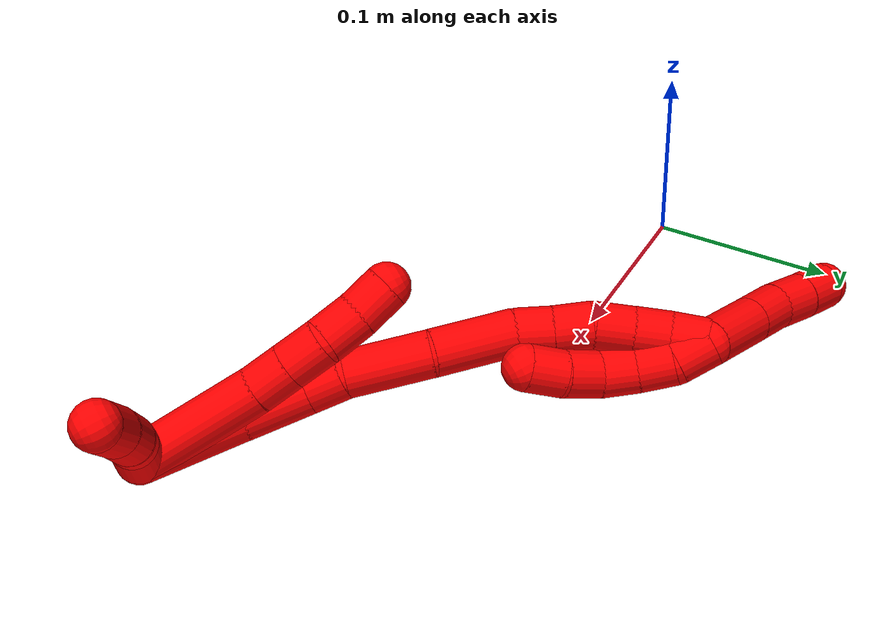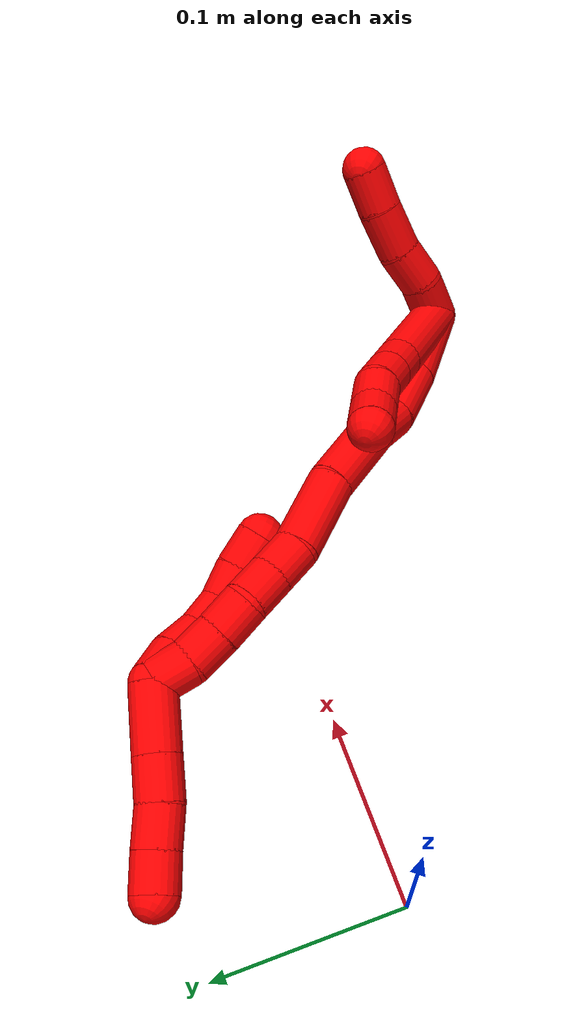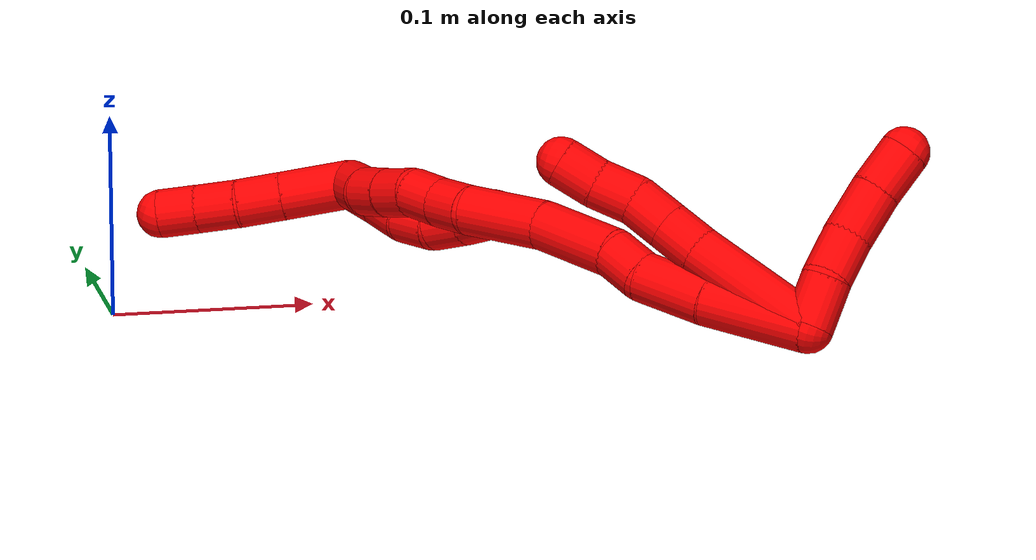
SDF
<sdf version="1.7">
 <world name="default">
  <model name="2">
   <static>0</static>
   <link name="2">
    <collision name="collision-cylinder-e_1_2_8">
     <pose>0.003582 -0.006829 -0.032816 2.93641 0.106454 0.955085</pose>
     <geometry><cylinder><radius>0.0125</radius><length>0.067419</length></cylinder></geometry>
     <surface>
      <friction><ode><mu>1.16</mu><mu2>1.16</mu2><slip1>0</slip1><slip2>0</slip2></ode></friction>
      <contact><ode><kp>1e+06</kp><kd>1</kd><max_vel>0</max_vel><min_depth>0.001</min_depth></ode></contact>
     </surface>
    </collision>
    <visual name="visual-cylinder-e_1_2_8">
     <pose>0.003582 -0.006829 -0.032816 2.93641 0.106454 0.955085</pose>
     <geometry><cylinder><radius>0.0125</radius><length>0.067419</length></cylinder></geometry>
     <material><ambient>1 0 0 1</ambient></material>
    </visual>
    <collision name="collision-cylinder-e_2_8_9">
     <pose>0.009009 -0.015765 -0.07532 2.92756 0.184049 1.41947</pose>
     <geometry><cylinder><radius>0.0125</radius><length>0.02017</length></cylinder></geometry>
     <surface>
      <friction><ode><mu>1.16</mu><mu2>1.16</mu2><slip1>0</slip1><slip2>0</slip2></ode></friction>
      <contact><ode><kp>1e+06</kp><kd>1</kd><max_vel>0</max_vel><min_depth>0.001</min_depth></ode></contact>
     </surface>
    </collision>
    <visual name="visual-cylinder-e_2_8_9">
     <pose>0.009009 -0.015765 -0.07532 2.92756 0.184049 1.41947</pose>
     <geometry><cylinder><radius>0.0125</radius><length>0.02017</length></cylinder></geometry>
     <material><ambient>1 0 0 1</ambient></material>
    </visual>
    <collision name="collision-cylinder-e_3_9_10">
     <pose>0.012777 -0.020088 -0.095068 2.92462 0.184496 1.40828</pose>
     <geometry><cylinder><radius>0.0125</radius><length>0.020959</length></cylinder></geometry>
     <surface>
      <friction><ode><mu>1.16</mu><mu2>1.16</mu2><slip1>0</slip1><slip2>0</slip2></ode></friction>
      <contact><ode><kp>1e+06</kp><kd>1</kd><max_vel>0</max_vel><min_depth>0.001</min_depth></ode></contact>
     </surface>
    </collision>
    <visual name="visual-cylinder-e_3_9_10">
     <pose>0.012777 -0.020088 -0.095068 2.92462 0.184496 1.40828</pose>
     <geometry><cylinder><radius>0.0125</radius><length>0.020959</length></cylinder></geometry>
     <material><ambient>1 0 0 1</ambient></material>
    </visual>
    <collision name="collision-cylinder-e_4_10_11">
     <pose>0.016377 -0.021378 -0.115551 -3.05282 0.158965 -2.12423</pose>
     <geometry><cylinder><radius>0.0125</radius><length>0.021195</length></cylinder></geometry>
     <surface>
      <friction><ode><mu>1.16</mu><mu2>1.16</mu2><slip1>0</slip1><slip2>0</slip2></ode></friction>
      <contact><ode><kp>1e+06</kp><kd>1</kd><max_vel>0</max_vel><min_depth>0.001</min_depth></ode></contact>
     </surface>
    </collision>
    <visual name="visual-cylinder-e_4_10_11">
     <pose>0.016377 -0.021378 -0.115551 -3.05282 0.158965 -2.12423</pose>
     <geometry><cylinder><radius>0.0125</radius><length>0.021195</length></cylinder></geometry>
     <material><ambient>1 0 0 1</ambient></material>
    </visual>
    <collision name="collision-cylinder-e_5_11_6">
     <pose>0.020943 -0.020316 -0.135681 -3.12773 0.289119 -3.04643</pose>
     <geometry><cylinder><radius>0.0125</radius><length>0.020257</length></cylinder></geometry>
     <surface>
      <friction><ode><mu>1.16</mu><mu2>1.16</mu2><slip1>0</slip1><slip2>0</slip2></ode></friction>
      <contact><ode><kp>1e+06</kp><kd>1</kd><max_vel>0</max_vel><min_depth>0.001</min_depth></ode></contact>
     </surface>
    </collision>
    <visual name="visual-cylinder-e_5_11_6">
     <pose>0.020943 -0.020316 -0.135681 -3.12773 0.289119 -3.04643</pose>
     <geometry><cylinder><radius>0.0125</radius><length>0.020257</length></cylinder></geometry>
     <material><ambient>1 0 0 1</ambient></material>
    </visual>
    <collision name="collision-cylinder-e_1_2_12">
     <pose>0.006784 -0.010728 -0.000683 1.63437 0.562967 0.597844</pose>
     <geometry><cylinder><radius>0.0125</radius><length>0.025422</length></cylinder></geometry>
     <surface>
      <friction><ode><mu>1.16</mu><mu2>1.16</mu2><slip1>0</slip1><slip2>0</slip2></ode></friction>
      <contact><ode><kp>1e+06</kp><kd>1</kd><max_vel>0</max_vel><min_depth>0.001</min_depth></ode></contact>
     </surface>
    </collision>
    <visual name="visual-cylinder-e_1_2_12">
     <pose>0.006784 -0.010728 -0.000683 1.63437 0.562967 0.597844</pose>
     <geometry><cylinder><radius>0.0125</radius><length>0.025422</length></cylinder></geometry>
     <material><ambient>1 0 0 1</ambient></material>
    </visual>
    <collision name="collision-cylinder-e_2_12_13">
     <pose>0.017337 -0.032701 -0.00163 1.59425 0.323327 0.330863</pose>
     <geometry><cylinder><radius>0.0125</radius><length>0.023726</length></cylinder></geometry>
     <surface>
      <friction><ode><mu>1.16</mu><mu2>1.16</mu2><slip1>0</slip1><slip2>0</slip2></ode></friction>
      <contact><ode><kp>1e+06</kp><kd>1</kd><max_vel>0</max_vel><min_depth>0.001</min_depth></ode></contact>
     </surface>
    </collision>
    <visual name="visual-cylinder-e_2_12_13">
     <pose>0.017337 -0.032701 -0.00163 1.59425 0.323327 0.330863</pose>
     <geometry><cylinder><radius>0.0125</radius><length>0.023726</length></cylinder></geometry>
     <material><ambient>1 0 0 1</ambient></material>
    </visual>
    <collision name="collision-cylinder-e_3_13_14">
     <pose>0.027028 -0.055975 -0.000498 1.45529 0.454844 0.406562</pose>
     <geometry><cylinder><radius>0.0125</radius><length>0.02696</length></cylinder></geometry>
     <surface>
      <friction><ode><mu>1.16</mu><mu2>1.16</mu2><slip1>0</slip1><slip2>0</slip2></ode></friction>
      <contact><ode><kp>1e+06</kp><kd>1</kd><max_vel>0</max_vel><min_depth>0.001</min_depth></ode></contact>
     </surface>
    </collision>
    <visual name="visual-cylinder-e_3_13_14">
     <pose>0.027028 -0.055975 -0.000498 1.45529 0.454844 0.406562</pose>
     <geometry><cylinder><radius>0.0125</radius><length>0.02696</length></cylinder></geometry>
     <material><ambient>1 0 0 1</ambient></material>
    </visual>
    <collision name="collision-cylinder-e_4_14_5">
     <pose>0.038293 -0.078422 0.003267 1.34714 0.463689 0.372472</pose>
     <geometry><cylinder><radius>0.0125</radius><length>0.023892</length></cylinder></geometry>
     <surface>
      <friction><ode><mu>1.16</mu><mu2>1.16</mu2><slip1>0</slip1><slip2>0</slip2></ode></friction>
      <contact><ode><kp>1e+06</kp><kd>1</kd><max_vel>0</max_vel><min_depth>0.001</min_depth></ode></contact>
     </surface>
    </collision>
    <visual name="visual-cylinder-e_4_14_5">
     <pose>0.038293 -0.078422 0.003267 1.34714 0.463689 0.372472</pose>
     <geometry><cylinder><radius>0.0125</radius><length>0.023892</length></cylinder></geometry>
     <material><ambient>1 0 0 1</ambient></material>
    </visual>
    <collision name="collision-cylinder-e_1_2_15">
     <pose>-0.002869 0.001437 -0.026487 -3.08738 -0.107723 2.20974</pose>
     <geometry><cylinder><radius>0.0125</radius><length>0.053362</length></cylinder></geometry>
     <surface>
      <friction><ode><mu>1.16</mu><mu2>1.16</mu2><slip1>0</slip1><slip2>0</slip2></ode></friction>
      <contact><ode><kp>1e+06</kp><kd>1</kd><max_vel>0</max_vel><min_depth>0.001</min_depth></ode></contact>
     </surface>
    </collision>
    <visual name="visual-cylinder-e_1_2_15">
     <pose>-0.002869 0.001437 -0.026487 -3.08738 -0.107723 2.20974</pose>
     <geometry><cylinder><radius>0.0125</radius><length>0.053362</length></cylinder></geometry>
     <material><ambient>1 0 0 1</ambient></material>
    </visual>
    <collision name="collision-cylinder-e_2_15_16">
     <pose>-0.007342 0.001996 -0.070825 3.09243 -0.089583 -2.13814</pose>
     <geometry><cylinder><radius>0.0125</radius><length>0.035887</length></cylinder></geometry>
     <surface>
      <friction><ode><mu>1.16</mu><mu2>1.16</mu2><slip1>0</slip1><slip2>0</slip2></ode></friction>
      <contact><ode><kp>1e+06</kp><kd>1</kd><max_vel>0</max_vel><min_depth>0.001</min_depth></ode></contact>
     </surface>
    </collision>
    <visual name="visual-cylinder-e_2_15_16">
     <pose>-0.007342 0.001996 -0.070825 3.09243 -0.089583 -2.13814</pose>
     <geometry><cylinder><radius>0.0125</radius><length>0.035887</length></cylinder></geometry>
     <material><ambient>1 0 0 1</ambient></material>
    </visual>
    <collision name="collision-cylinder-e_3_16_17">
     <pose>-0.009044 -0.002476 -0.098594 2.79397 -0.009146 -0.052077</pose>
     <geometry><cylinder><radius>0.0125</radius><length>0.021102</length></cylinder></geometry>
     <surface>
      <friction><ode><mu>1.16</mu><mu2>1.16</mu2><slip1>0</slip1><slip2>0</slip2></ode></friction>
      <contact><ode><kp>1e+06</kp><kd>1</kd><max_vel>0</max_vel><min_depth>0.001</min_depth></ode></contact>
     </surface>
    </collision>
    <visual name="visual-cylinder-e_3_16_17">
     <pose>-0.009044 -0.002476 -0.098594 2.79397 -0.009146 -0.052077</pose>
     <geometry><cylinder><radius>0.0125</radius><length>0.021102</length></cylinder></geometry>
     <material><ambient>1 0 0 1</ambient></material>
    </visual>
    <collision name="collision-cylinder-e_4_17_18">
     <pose>-0.013927 -0.010054 -0.130043 2.95862 -0.215228 -1.73351</pose>
     <geometry><cylinder><radius>0.0125</radius><length>0.044823</length></cylinder></geometry>
     <surface>
      <friction><ode><mu>1.16</mu><mu2>1.16</mu2><slip1>0</slip1><slip2>0</slip2></ode></friction>
      <contact><ode><kp>1e+06</kp><kd>1</kd><max_vel>0</max_vel><min_depth>0.001</min_depth></ode></contact>
     </surface>
    </collision>
    <visual name="visual-cylinder-e_4_17_18">
     <pose>-0.013927 -0.010054 -0.130043 2.95862 -0.215228 -1.73351</pose>
     <geometry><cylinder><radius>0.0125</radius><length>0.044823</length></cylinder></geometry>
     <material><ambient>1 0 0 1</ambient></material>
    </visual>
    <collision name="collision-cylinder-e_5_18_19">
     <pose>-0.02407 -0.014081 -0.172886 3.13956 -0.246223 -3.12515</pose>
     <geometry><cylinder><radius>0.0125</radius><length>0.043955</length></cylinder></geometry>
     <surface>
      <friction><ode><mu>1.16</mu><mu2>1.16</mu2><slip1>0</slip1><slip2>0</slip2></ode></friction>
      <contact><ode><kp>1e+06</kp><kd>1</kd><max_vel>0</max_vel><min_depth>0.001</min_depth></ode></contact>
     </surface>
    </collision>
    <visual name="visual-cylinder-e_5_18_19">
     <pose>-0.02407 -0.014081 -0.172886 3.13956 -0.246223 -3.12515</pose>
     <geometry><cylinder><radius>0.0125</radius><length>0.043955</length></cylinder></geometry>
     <material><ambient>1 0 0 1</ambient></material>
    </visual>
    <collision name="collision-cylinder-e_6_19_20">
     <pose>-0.033229 -0.016212 -0.203242 2.91468 -0.388847 -2.09244</pose>
     <geometry><cylinder><radius>0.0125</radius><length>0.020055</length></cylinder></geometry>
     <surface>
      <friction><ode><mu>1.16</mu><mu2>1.16</mu2><slip1>0</slip1><slip2>0</slip2></ode></friction>
      <contact><ode><kp>1e+06</kp><kd>1</kd><max_vel>0</max_vel><min_depth>0.001</min_depth></ode></contact>
     </surface>
    </collision>
    <visual name="visual-cylinder-e_6_19_20">
     <pose>-0.033229 -0.016212 -0.203242 2.91468 -0.388847 -2.09244</pose>
     <geometry><cylinder><radius>0.0125</radius><length>0.020055</length></cylinder></geometry>
     <material><ambient>1 0 0 1</ambient></material>
    </visual>
    <collision name="collision-cylinder-e_7_20_21">
     <pose>-0.040178 -0.020576 -0.221579 2.90149 -0.317736 -1.85085</pose>
     <geometry><cylinder><radius>0.0125</radius><length>0.02015</length></cylinder></geometry>
     <surface>
      <friction><ode><mu>1.16</mu><mu2>1.16</mu2><slip1>0</slip1><slip2>0</slip2></ode></friction>
      <contact><ode><kp>1e+06</kp><kd>1</kd><max_vel>0</max_vel><min_depth>0.001</min_depth></ode></contact>
     </surface>
    </collision>
    <visual name="visual-cylinder-e_7_20_21">
     <pose>-0.040178 -0.020576 -0.221579 2.90149 -0.317736 -1.85085</pose>
     <geometry><cylinder><radius>0.0125</radius><length>0.02015</length></cylinder></geometry>
     <material><ambient>1 0 0 1</ambient></material>
    </visual>
    <collision name="collision-cylinder-e_8_21_22">
     <pose>-0.048982 -0.024402 -0.239224 2.95793 -0.587559 -2.55061</pose>
     <geometry><cylinder><radius>0.0125</radius><length>0.020406</length></cylinder></geometry>
     <surface>
      <friction><ode><mu>1.16</mu><mu2>1.16</mu2><slip1>0</slip1><slip2>0</slip2></ode></friction>
      <contact><ode><kp>1e+06</kp><kd>1</kd><max_vel>0</max_vel><min_depth>0.001</min_depth></ode></contact>
     </surface>
    </collision>
    <visual name="visual-cylinder-e_8_21_22">
     <pose>-0.048982 -0.024402 -0.239224 2.95793 -0.587559 -2.55061</pose>
     <geometry><cylinder><radius>0.0125</radius><length>0.020406</length></cylinder></geometry>
     <material><ambient>1 0 0 1</ambient></material>
    </visual>
    <collision name="collision-cylinder-e_9_22_23">
     <pose>-0.060133 -0.02805 -0.25567 2.8882 -0.581394 -2.33656</pose>
     <geometry><cylinder><radius>0.0125</radius><length>0.020015</length></cylinder></geometry>
     <surface>
      <friction><ode><mu>1.16</mu><mu2>1.16</mu2><slip1>0</slip1><slip2>0</slip2></ode></friction>
      <contact><ode><kp>1e+06</kp><kd>1</kd><max_vel>0</max_vel><min_depth>0.001</min_depth></ode></contact>
     </surface>
    </collision>
    <visual name="visual-cylinder-e_9_22_23">
     <pose>-0.060133 -0.02805 -0.25567 2.8882 -0.581394 -2.33656</pose>
     <geometry><cylinder><radius>0.0125</radius><length>0.020015</length></cylinder></geometry>
     <material><ambient>1 0 0 1</ambient></material>
    </visual>
    <collision name="collision-cylinder-e_10_23_1">
     <pose>-0.070858 -0.034735 -0.271119 2.58367 -0.542825 -1.54193</pose>
     <geometry><cylinder><radius>0.0125</radius><length>0.020245</length></cylinder></geometry>
     <surface>
      <friction><ode><mu>1.16</mu><mu2>1.16</mu2><slip1>0</slip1><slip2>0</slip2></ode></friction>
      <contact><ode><kp>1e+06</kp><kd>1</kd><max_vel>0</max_vel><min_depth>0.001</min_depth></ode></contact>
     </surface>
    </collision>
    <visual name="visual-cylinder-e_10_23_1">
     <pose>-0.070858 -0.034735 -0.271119 2.58367 -0.542825 -1.54193</pose>
     <geometry><cylinder><radius>0.0125</radius><length>0.020245</length></cylinder></geometry>
     <material><ambient>1 0 0 1</ambient></material>
    </visual>
    <collision name="collision-cylinder-e_1_1_24">
     <pose>-0.079171 -0.029803 -0.293121 -2.56527 -0.174702 0.574548</pose>
     <geometry><cylinder><radius>0.0125</radius><length>0.035482</length></cylinder></geometry>
     <surface>
      <friction><ode><mu>1.16</mu><mu2>1.16</mu2><slip1>0</slip1><slip2>0</slip2></ode></friction>
      <contact><ode><kp>1e+06</kp><kd>1</kd><max_vel>0</max_vel><min_depth>0.001</min_depth></ode></contact>
     </surface>
    </collision>
    <visual name="visual-cylinder-e_1_1_24">
     <pose>-0.079171 -0.029803 -0.293121 -2.56527 -0.174702 0.574548</pose>
     <geometry><cylinder><radius>0.0125</radius><length>0.035482</length></cylinder></geometry>
     <material><ambient>1 0 0 1</ambient></material>
    </visual>
    <collision name="collision-cylinder-e_2_24_25">
     <pose>-0.084141 -0.014118 -0.317207 -2.56301 -0.16581 0.544496</pose>
     <geometry><cylinder><radius>0.0125</radius><length>0.022857</length></cylinder></geometry>
     <surface>
      <friction><ode><mu>1.16</mu><mu2>1.16</mu2><slip1>0</slip1><slip2>0</slip2></ode></friction>
      <contact><ode><kp>1e+06</kp><kd>1</kd><max_vel>0</max_vel><min_depth>0.001</min_depth></ode></contact>
     </surface>
    </collision>
    <visual name="visual-cylinder-e_2_24_25">
     <pose>-0.084141 -0.014118 -0.317207 -2.56301 -0.16581 0.544496</pose>
     <geometry><cylinder><radius>0.0125</radius><length>0.022857</length></cylinder></geometry>
     <material><ambient>1 0 0 1</ambient></material>
    </visual>
    <collision name="collision-cylinder-e_3_25_26">
     <pose>-0.088569 -0.003402 -0.336049 -2.69078 -0.238631 0.963481</pose>
     <geometry><cylinder><radius>0.0125</radius><length>0.021506</length></cylinder></geometry>
     <surface>
      <friction><ode><mu>1.16</mu><mu2>1.16</mu2><slip1>0</slip1><slip2>0</slip2></ode></friction>
      <contact><ode><kp>1e+06</kp><kd>1</kd><max_vel>0</max_vel><min_depth>0.001</min_depth></ode></contact>
     </surface>
    </collision>
    <visual name="visual-cylinder-e_3_25_26">
     <pose>-0.088569 -0.003402 -0.336049 -2.69078 -0.238631 0.963481</pose>
     <geometry><cylinder><radius>0.0125</radius><length>0.021506</length></cylinder></geometry>
     <material><ambient>1 0 0 1</ambient></material>
    </visual>
    <collision name="collision-cylinder-e_4_26_4">
     <pose>-0.093115 0.005706 -0.354215 -2.66212 -0.200286 0.780017</pose>
     <geometry><cylinder><radius>0.0125</radius><length>0.020155</length></cylinder></geometry>
     <surface>
      <friction><ode><mu>1.16</mu><mu2>1.16</mu2><slip1>0</slip1><slip2>0</slip2></ode></friction>
      <contact><ode><kp>1e+06</kp><kd>1</kd><max_vel>0</max_vel><min_depth>0.001</min_depth></ode></contact>
     </surface>
    </collision>
    <visual name="visual-cylinder-e_4_26_4">
     <pose>-0.093115 0.005706 -0.354215 -2.66212 -0.200286 0.780017</pose>
     <geometry><cylinder><radius>0.0125</radius><length>0.020155</length></cylinder></geometry>
     <material><ambient>1 0 0 1</ambient></material>
    </visual>
    <collision name="collision-cylinder-e_1_1_27">
     <pose>-0.076501 -0.037831 -0.268593 -0.15001 -0.041348 0.003108</pose>
     <geometry><cylinder><radius>0.0125</radius><length>0.02</length></cylinder></geometry>
     <surface>
      <friction><ode><mu>1.16</mu><mu2>1.16</mu2><slip1>0</slip1><slip2>0</slip2></ode></friction>
      <contact><ode><kp>1e+06</kp><kd>1</kd><max_vel>0</max_vel><min_depth>0.001</min_depth></ode></contact>
     </surface>
    </collision>
    <visual name="visual-cylinder-e_1_1_27">
     <pose>-0.076501 -0.037831 -0.268593 -0.15001 -0.041348 0.003108</pose>
     <geometry><cylinder><radius>0.0125</radius><length>0.02</length></cylinder></geometry>
     <material><ambient>1 0 0 1</ambient></material>
    </visual>
    <collision name="collision-cylinder-e_2_27_28">
     <pose>-0.074957 -0.032854 -0.249547 -0.363197 0.196998 -0.036286</pose>
     <geometry><cylinder><radius>0.0125</radius><length>0.02</length></cylinder></geometry>
     <surface>
      <friction><ode><mu>1.16</mu><mu2>1.16</mu2><slip1>0</slip1><slip2>0</slip2></ode></friction>
      <contact><ode><kp>1e+06</kp><kd>1</kd><max_vel>0</max_vel><min_depth>0.001</min_depth></ode></contact>
     </surface>
    </collision>
    <visual name="visual-cylinder-e_2_27_28">
     <pose>-0.074957 -0.032854 -0.249547 -0.363197 0.196998 -0.036286</pose>
     <geometry><cylinder><radius>0.0125</radius><length>0.02</length></cylinder></geometry>
     <material><ambient>1 0 0 1</ambient></material>
    </visual>
    <collision name="collision-cylinder-e_3_28_29">
     <pose>-0.069739 -0.027902 -0.231041 -0.155892 0.332065 -0.026175</pose>
     <geometry><cylinder><radius>0.0125</radius><length>0.02</length></cylinder></geometry>
     <surface>
      <friction><ode><mu>1.16</mu><mu2>1.16</mu2><slip1>0</slip1><slip2>0</slip2></ode></friction>
      <contact><ode><kp>1e+06</kp><kd>1</kd><max_vel>0</max_vel><min_depth>0.001</min_depth></ode></contact>
     </surface>
    </collision>
    <visual name="visual-cylinder-e_3_28_29">
     <pose>-0.069739 -0.027902 -0.231041 -0.155892 0.332065 -0.026175</pose>
     <geometry><cylinder><radius>0.0125</radius><length>0.02</length></cylinder></geometry>
     <material><ambient>1 0 0 1</ambient></material>
    </visual>
    <collision name="collision-cylinder-e_4_29_30">
     <pose>-0.061423 -0.027818 -0.213186 0.16112 0.530115 0.043823</pose>
     <geometry><cylinder><radius>0.0125</radius><length>0.02</length></cylinder></geometry>
     <surface>
      <friction><ode><mu>1.16</mu><mu2>1.16</mu2><slip1>0</slip1><slip2>0</slip2></ode></friction>
      <contact><ode><kp>1e+06</kp><kd>1</kd><max_vel>0</max_vel><min_depth>0.001</min_depth></ode></contact>
     </surface>
    </collision>
    <visual name="visual-cylinder-e_4_29_30">
     <pose>-0.061423 -0.027818 -0.213186 0.16112 0.530115 0.043823</pose>
     <geometry><cylinder><radius>0.0125</radius><length>0.02</length></cylinder></geometry>
     <material><ambient>1 0 0 1</ambient></material>
    </visual>
    <collision name="collision-cylinder-e_5_30_3">
     <pose>-0.050215 -0.029505 -0.196792 0.038487 0.662606 0.01324</pose>
     <geometry><cylinder><radius>0.0125</radius><length>0.02</length></cylinder></geometry>
     <surface>
      <friction><ode><mu>1.16</mu><mu2>1.16</mu2><slip1>0</slip1><slip2>0</slip2></ode></friction>
      <contact><ode><kp>1e+06</kp><kd>1</kd><max_vel>0</max_vel><min_depth>0.001</min_depth></ode></contact>
     </surface>
    </collision>
    <visual name="visual-cylinder-e_5_30_3">
     <pose>-0.050215 -0.029505 -0.196792 0.038487 0.662606 0.01324</pose>
     <geometry><cylinder><radius>0.0125</radius><length>0.02</length></cylinder></geometry>
     <material><ambient>1 0 0 1</ambient></material>
    </visual>
    <collision name="collision-sphere-3">
     <pose>-0.044063 -0.029809 -0.188914 0 -0 0</pose>
     <geometry><sphere><radius>0.0125</radius></sphere></geometry>
     <surface>
      <friction><ode><mu>1.16</mu><mu2>1.16</mu2><slip1>0</slip1><slip2>0</slip2></ode></friction>
      <contact><ode><kp>1e+06</kp><kd>1</kd><max_vel>0</max_vel><min_depth>0.001</min_depth></ode></contact>
     </surface>
    </collision>
    <visual name="visual-sphere-3">
     <pose>-0.044063 -0.029809 -0.188914 0 -0 0</pose>
     <geometry><sphere><radius>0.0125</radius></sphere></geometry>
     <material><ambient>1 0 0 1</ambient></material>
    </visual>
    <collision name="collision-sphere-30">
     <pose>-0.056367 -0.029202 -0.20467 0 -0 0</pose>
     <geometry><sphere><radius>0.0125</radius></sphere></geometry>
     <surface>
      <friction><ode><mu>1.16</mu><mu2>1.16</mu2><slip1>0</slip1><slip2>0</slip2></ode></friction>
      <contact><ode><kp>1e+06</kp><kd>1</kd><max_vel>0</max_vel><min_depth>0.001</min_depth></ode></contact>
     </surface>
    </collision>
    <visual name="visual-sphere-30">
     <pose>-0.056367 -0.029202 -0.20467 0 -0 0</pose>
     <geometry><sphere><radius>0.0125</radius></sphere></geometry>
     <material><ambient>1 0 0 1</ambient></material>
    </visual>
    <collision name="collision-sphere-29">
     <pose>-0.066479 -0.026434 -0.221702 0 -0 0</pose>
     <geometry><sphere><radius>0.0125</radius></sphere></geometry>
     <surface>
      <friction><ode><mu>1.16</mu><mu2>1.16</mu2><slip1>0</slip1><slip2>0</slip2></ode></friction>
      <contact><ode><kp>1e+06</kp><kd>1</kd><max_vel>0</max_vel><min_depth>0.001</min_depth></ode></contact>
     </surface>
    </collision>
    <visual name="visual-sphere-29">
     <pose>-0.066479 -0.026434 -0.221702 0 -0 0</pose>
     <geometry><sphere><radius>0.0125</radius></sphere></geometry>
     <material><ambient>1 0 0 1</ambient></material>
    </visual>
    <collision name="collision-sphere-28">
     <pose>-0.072999 -0.02937 -0.24038 0 -0 0</pose>
     <geometry><sphere><radius>0.0125</radius></sphere></geometry>
     <surface>
      <friction><ode><mu>1.16</mu><mu2>1.16</mu2><slip1>0</slip1><slip2>0</slip2></ode></friction>
      <contact><ode><kp>1e+06</kp><kd>1</kd><max_vel>0</max_vel><min_depth>0.001</min_depth></ode></contact>
     </surface>
    </collision>
    <visual name="visual-sphere-28">
     <pose>-0.072999 -0.02937 -0.24038 0 -0 0</pose>
     <geometry><sphere><radius>0.0125</radius></sphere></geometry>
     <material><ambient>1 0 0 1</ambient></material>
    </visual>
    <collision name="collision-sphere-27">
     <pose>-0.076914 -0.036337 -0.258713 0 -0 0</pose>
     <geometry><sphere><radius>0.0125</radius></sphere></geometry>
     <surface>
      <friction><ode><mu>1.16</mu><mu2>1.16</mu2><slip1>0</slip1><slip2>0</slip2></ode></friction>
      <contact><ode><kp>1e+06</kp><kd>1</kd><max_vel>0</max_vel><min_depth>0.001</min_depth></ode></contact>
     </surface>
    </collision>
    <visual name="visual-sphere-27">
     <pose>-0.076914 -0.036337 -0.258713 0 -0 0</pose>
     <geometry><sphere><radius>0.0125</radius></sphere></geometry>
     <material><ambient>1 0 0 1</ambient></material>
    </visual>
    <collision name="collision-sphere-4">
     <pose>-0.09512 0.010262 -0.362978 0 -0 0</pose>
     <geometry><sphere><radius>0.0125</radius></sphere></geometry>
     <surface>
      <friction><ode><mu>1.16</mu><mu2>1.16</mu2><slip1>0</slip1><slip2>0</slip2></ode></friction>
      <contact><ode><kp>1e+06</kp><kd>1</kd><max_vel>0</max_vel><min_depth>0.001</min_depth></ode></contact>
     </surface>
    </collision>
    <visual name="visual-sphere-4">
     <pose>-0.09512 0.010262 -0.362978 0 -0 0</pose>
     <geometry><sphere><radius>0.0125</radius></sphere></geometry>
     <material><ambient>1 0 0 1</ambient></material>
    </visual>
    <collision name="collision-sphere-26">
     <pose>-0.091111 0.00115 -0.345453 0 -0 0</pose>
     <geometry><sphere><radius>0.0125</radius></sphere></geometry>
     <surface>
      <friction><ode><mu>1.16</mu><mu2>1.16</mu2><slip1>0</slip1><slip2>0</slip2></ode></friction>
      <contact><ode><kp>1e+06</kp><kd>1</kd><max_vel>0</max_vel><min_depth>0.001</min_depth></ode></contact>
     </surface>
    </collision>
    <visual name="visual-sphere-26">
     <pose>-0.091111 0.00115 -0.345453 0 -0 0</pose>
     <geometry><sphere><radius>0.0125</radius></sphere></geometry>
     <material><ambient>1 0 0 1</ambient></material>
    </visual>
    <collision name="collision-sphere-25">
     <pose>-0.086027 -0.007955 -0.326644 0 -0 0</pose>
     <geometry><sphere><radius>0.0125</radius></sphere></geometry>
     <surface>
      <friction><ode><mu>1.16</mu><mu2>1.16</mu2><slip1>0</slip1><slip2>0</slip2></ode></friction>
      <contact><ode><kp>1e+06</kp><kd>1</kd><max_vel>0</max_vel><min_depth>0.001</min_depth></ode></contact>
     </surface>
    </collision>
    <visual name="visual-sphere-25">
     <pose>-0.086027 -0.007955 -0.326644 0 -0 0</pose>
     <geometry><sphere><radius>0.0125</radius></sphere></geometry>
     <material><ambient>1 0 0 1</ambient></material>
    </visual>
    <collision name="collision-sphere-24">
     <pose>-0.082254 -0.020282 -0.30777 0 -0 0</pose>
     <geometry><sphere><radius>0.0125</radius></sphere></geometry>
     <surface>
      <friction><ode><mu>1.16</mu><mu2>1.16</mu2><slip1>0</slip1><slip2>0</slip2></ode></friction>
      <contact><ode><kp>1e+06</kp><kd>1</kd><max_vel>0</max_vel><min_depth>0.001</min_depth></ode></contact>
     </surface>
    </collision>
    <visual name="visual-sphere-24">
     <pose>-0.082254 -0.020282 -0.30777 0 -0 0</pose>
     <geometry><sphere><radius>0.0125</radius></sphere></geometry>
     <material><ambient>1 0 0 1</ambient></material>
    </visual>
    <collision name="collision-sphere-1">
     <pose>-0.076087 -0.039324 -0.278472 0 -0 0</pose>
     <geometry><sphere><radius>0.0125</radius></sphere></geometry>
     <surface>
      <friction><ode><mu>1.16</mu><mu2>1.16</mu2><slip1>0</slip1><slip2>0</slip2></ode></friction>
      <contact><ode><kp>1e+06</kp><kd>1</kd><max_vel>0</max_vel><min_depth>0.001</min_depth></ode></contact>
     </surface>
    </collision>
    <visual name="visual-sphere-1">
     <pose>-0.076087 -0.039324 -0.278472 0 -0 0</pose>
     <geometry><sphere><radius>0.0125</radius></sphere></geometry>
     <material><ambient>1 0 0 1</ambient></material>
    </visual>
    <collision name="collision-sphere-23">
     <pose>-0.06563 -0.030147 -0.263766 0 -0 0</pose>
     <geometry><sphere><radius>0.0125</radius></sphere></geometry>
     <surface>
      <friction><ode><mu>1.16</mu><mu2>1.16</mu2><slip1>0</slip1><slip2>0</slip2></ode></friction>
      <contact><ode><kp>1e+06</kp><kd>1</kd><max_vel>0</max_vel><min_depth>0.001</min_depth></ode></contact>
     </surface>
    </collision>
    <visual name="visual-sphere-23">
     <pose>-0.06563 -0.030147 -0.263766 0 -0 0</pose>
     <geometry><sphere><radius>0.0125</radius></sphere></geometry>
     <material><ambient>1 0 0 1</ambient></material>
    </visual>
    <collision name="collision-sphere-22">
     <pose>-0.054637 -0.025953 -0.247573 0 -0 0</pose>
     <geometry><sphere><radius>0.0125</radius></sphere></geometry>
     <surface>
      <friction><ode><mu>1.16</mu><mu2>1.16</mu2><slip1>0</slip1><slip2>0</slip2></ode></friction>
      <contact><ode><kp>1e+06</kp><kd>1</kd><max_vel>0</max_vel><min_depth>0.001</min_depth></ode></contact>
     </surface>
    </collision>
    <visual name="visual-sphere-22">
     <pose>-0.054637 -0.025953 -0.247573 0 -0 0</pose>
     <geometry><sphere><radius>0.0125</radius></sphere></geometry>
     <material><ambient>1 0 0 1</ambient></material>
    </visual>
    <collision name="collision-sphere-21">
     <pose>-0.043326 -0.022851 -0.230875 0 -0 0</pose>
     <geometry><sphere><radius>0.0125</radius></sphere></geometry>
     <surface>
      <friction><ode><mu>1.16</mu><mu2>1.16</mu2><slip1>0</slip1><slip2>0</slip2></ode></friction>
      <contact><ode><kp>1e+06</kp><kd>1</kd><max_vel>0</max_vel><min_depth>0.001</min_depth></ode></contact>
     </surface>
    </collision>
    <visual name="visual-sphere-21">
     <pose>-0.043326 -0.022851 -0.230875 0 -0 0</pose>
     <geometry><sphere><radius>0.0125</radius></sphere></geometry>
     <material><ambient>1 0 0 1</ambient></material>
    </visual>
    <collision name="collision-sphere-6">
     <pose>0.02383 -0.020181 -0.145388 0 -0 0</pose>
     <geometry><sphere><radius>0.0125</radius></sphere></geometry>
     <surface>
      <friction><ode><mu>1.16</mu><mu2>1.16</mu2><slip1>0</slip1><slip2>0</slip2></ode></friction>
      <contact><ode><kp>1e+06</kp><kd>1</kd><max_vel>0</max_vel><min_depth>0.001</min_depth></ode></contact>
     </surface>
    </collision>
    <visual name="visual-sphere-6">
     <pose>0.02383 -0.020181 -0.145388 0 -0 0</pose>
     <geometry><sphere><radius>0.0125</radius></sphere></geometry>
     <material><ambient>1 0 0 1</ambient></material>
    </visual>
    <collision name="collision-sphere-11">
     <pose>0.018055 -0.02045 -0.125974 0 -0 0</pose>
     <geometry><sphere><radius>0.0125</radius></sphere></geometry>
     <surface>
      <friction><ode><mu>1.16</mu><mu2>1.16</mu2><slip1>0</slip1><slip2>0</slip2></ode></friction>
      <contact><ode><kp>1e+06</kp><kd>1</kd><max_vel>0</max_vel><min_depth>0.001</min_depth></ode></contact>
     </surface>
    </collision>
    <visual name="visual-sphere-11">
     <pose>0.018055 -0.02045 -0.125974 0 -0 0</pose>
     <geometry><sphere><radius>0.0125</radius></sphere></geometry>
     <material><ambient>1 0 0 1</ambient></material>
    </visual>
    <collision name="collision-sphere-10">
     <pose>0.0147 -0.022306 -0.105128 0 -0 0</pose>
     <geometry><sphere><radius>0.0125</radius></sphere></geometry>
     <surface>
      <friction><ode><mu>1.16</mu><mu2>1.16</mu2><slip1>0</slip1><slip2>0</slip2></ode></friction>
      <contact><ode><kp>1e+06</kp><kd>1</kd><max_vel>0</max_vel><min_depth>0.001</min_depth></ode></contact>
     </surface>
    </collision>
    <visual name="visual-sphere-10">
     <pose>0.0147 -0.022306 -0.105128 0 -0 0</pose>
     <geometry><sphere><radius>0.0125</radius></sphere></geometry>
     <material><ambient>1 0 0 1</ambient></material>
    </visual>
    <collision name="collision-sphere-9">
     <pose>0.010855 -0.01787 -0.085008 0 -0 0</pose>
     <geometry><sphere><radius>0.0125</radius></sphere></geometry>
     <surface>
      <friction><ode><mu>1.16</mu><mu2>1.16</mu2><slip1>0</slip1><slip2>0</slip2></ode></friction>
      <contact><ode><kp>1e+06</kp><kd>1</kd><max_vel>0</max_vel><min_depth>0.001</min_depth></ode></contact>
     </surface>
    </collision>
    <visual name="visual-sphere-9">
     <pose>0.010855 -0.01787 -0.085008 0 -0 0</pose>
     <geometry><sphere><radius>0.0125</radius></sphere></geometry>
     <material><ambient>1 0 0 1</ambient></material>
    </visual>
    <collision name="collision-sphere-2">
     <geometry><sphere><radius>0.0125</radius></sphere></geometry>
     <surface>
      <friction><ode><mu>1.16</mu><mu2>1.16</mu2><slip1>0</slip1><slip2>0</slip2></ode></friction>
      <contact><ode><kp>1e+06</kp><kd>1</kd><max_vel>0</max_vel><min_depth>0.001</min_depth></ode></contact>
     </surface>
    </collision>
    <visual name="visual-sphere-2">
     <geometry><sphere><radius>0.0125</radius></sphere></geometry>
     <material><ambient>1 0 0 1</ambient></material>
    </visual>
    <collision name="collision-sphere-19">
     <pose>-0.029427 -0.014125 -0.194201 0 -0 0</pose>
     <geometry><sphere><radius>0.0125</radius></sphere></geometry>
     <surface>
      <friction><ode><mu>1.16</mu><mu2>1.16</mu2><slip1>0</slip1><slip2>0</slip2></ode></friction>
      <contact><ode><kp>1e+06</kp><kd>1</kd><max_vel>0</max_vel><min_depth>0.001</min_depth></ode></contact>
     </surface>
    </collision>
    <visual name="visual-sphere-19">
     <pose>-0.029427 -0.014125 -0.194201 0 -0 0</pose>
     <geometry><sphere><radius>0.0125</radius></sphere></geometry>
     <material><ambient>1 0 0 1</ambient></material>
    </visual>
    <collision name="collision-sphere-8">
     <pose>0.007164 -0.013659 -0.065631 0 -0 0</pose>
     <geometry><sphere><radius>0.0125</radius></sphere></geometry>
     <surface>
      <friction><ode><mu>1.16</mu><mu2>1.16</mu2><slip1>0</slip1><slip2>0</slip2></ode></friction>
      <contact><ode><kp>1e+06</kp><kd>1</kd><max_vel>0</max_vel><min_depth>0.001</min_depth></ode></contact>
     </surface>
    </collision>
    <visual name="visual-sphere-8">
     <pose>0.007164 -0.013659 -0.065631 0 -0 0</pose>
     <geometry><sphere><radius>0.0125</radius></sphere></geometry>
     <material><ambient>1 0 0 1</ambient></material>
    </visual>
    <collision name="collision-sphere-12">
     <pose>0.013568 -0.021455 -0.001366 0 -0 0</pose>
     <geometry><sphere><radius>0.0125</radius></sphere></geometry>
     <surface>
      <friction><ode><mu>1.16</mu><mu2>1.16</mu2><slip1>0</slip1><slip2>0</slip2></ode></friction>
      <contact><ode><kp>1e+06</kp><kd>1</kd><max_vel>0</max_vel><min_depth>0.001</min_depth></ode></contact>
     </surface>
    </collision>
    <visual name="visual-sphere-12">
     <pose>0.013568 -0.021455 -0.001366 0 -0 0</pose>
     <geometry><sphere><radius>0.0125</radius></sphere></geometry>
     <material><ambient>1 0 0 1</ambient></material>
    </visual>
    <collision name="collision-sphere-13">
     <pose>0.021106 -0.043946 -0.001893 0 -0 0</pose>
     <geometry><sphere><radius>0.0125</radius></sphere></geometry>
     <surface>
      <friction><ode><mu>1.16</mu><mu2>1.16</mu2><slip1>0</slip1><slip2>0</slip2></ode></friction>
      <contact><ode><kp>1e+06</kp><kd>1</kd><max_vel>0</max_vel><min_depth>0.001</min_depth></ode></contact>
     </surface>
    </collision>
    <visual name="visual-sphere-13">
     <pose>0.021106 -0.043946 -0.001893 0 -0 0</pose>
     <geometry><sphere><radius>0.0125</radius></sphere></geometry>
     <material><ambient>1 0 0 1</ambient></material>
    </visual>
    <collision name="collision-sphere-14">
     <pose>0.03295 -0.068004 0.000898 0 -0 0</pose>
     <geometry><sphere><radius>0.0125</radius></sphere></geometry>
     <surface>
      <friction><ode><mu>1.16</mu><mu2>1.16</mu2><slip1>0</slip1><slip2>0</slip2></ode></friction>
      <contact><ode><kp>1e+06</kp><kd>1</kd><max_vel>0</max_vel><min_depth>0.001</min_depth></ode></contact>
     </surface>
    </collision>
    <visual name="visual-sphere-14">
     <pose>0.03295 -0.068004 0.000898 0 -0 0</pose>
     <geometry><sphere><radius>0.0125</radius></sphere></geometry>
     <material><ambient>1 0 0 1</ambient></material>
    </visual>
    <collision name="collision-sphere-5">
     <pose>0.043636 -0.08884 0.005637 0 -0 0</pose>
     <geometry><sphere><radius>0.0125</radius></sphere></geometry>
     <surface>
      <friction><ode><mu>1.16</mu><mu2>1.16</mu2><slip1>0</slip1><slip2>0</slip2></ode></friction>
      <contact><ode><kp>1e+06</kp><kd>1</kd><max_vel>0</max_vel><min_depth>0.001</min_depth></ode></contact>
     </surface>
    </collision>
    <visual name="visual-sphere-5">
     <pose>0.043636 -0.08884 0.005637 0 -0 0</pose>
     <geometry><sphere><radius>0.0125</radius></sphere></geometry>
     <material><ambient>1 0 0 1</ambient></material>
    </visual>
    <collision name="collision-sphere-15">
     <pose>-0.005737 0.002874 -0.052975 0 -0 0</pose>
     <geometry><sphere><radius>0.0125</radius></sphere></geometry>
     <surface>
      <friction><ode><mu>1.16</mu><mu2>1.16</mu2><slip1>0</slip1><slip2>0</slip2></ode></friction>
      <contact><ode><kp>1e+06</kp><kd>1</kd><max_vel>0</max_vel><min_depth>0.001</min_depth></ode></contact>
     </surface>
    </collision>
    <visual name="visual-sphere-15">
     <pose>-0.005737 0.002874 -0.052975 0 -0 0</pose>
     <geometry><sphere><radius>0.0125</radius></sphere></geometry>
     <material><ambient>1 0 0 1</ambient></material>
    </visual>
    <collision name="collision-sphere-16">
     <pose>-0.008948 0.001118 -0.088674 0 -0 0</pose>
     <geometry><sphere><radius>0.0125</radius></sphere></geometry>
     <surface>
      <friction><ode><mu>1.16</mu><mu2>1.16</mu2><slip1>0</slip1><slip2>0</slip2></ode></friction>
      <contact><ode><kp>1e+06</kp><kd>1</kd><max_vel>0</max_vel><min_depth>0.001</min_depth></ode></contact>
     </surface>
    </collision>
    <visual name="visual-sphere-16">
     <pose>-0.008948 0.001118 -0.088674 0 -0 0</pose>
     <geometry><sphere><radius>0.0125</radius></sphere></geometry>
     <material><ambient>1 0 0 1</ambient></material>
    </visual>
    <collision name="collision-sphere-17">
     <pose>-0.009141 -0.006071 -0.108514 0 -0 0</pose>
     <geometry><sphere><radius>0.0125</radius></sphere></geometry>
     <surface>
      <friction><ode><mu>1.16</mu><mu2>1.16</mu2><slip1>0</slip1><slip2>0</slip2></ode></friction>
      <contact><ode><kp>1e+06</kp><kd>1</kd><max_vel>0</max_vel><min_depth>0.001</min_depth></ode></contact>
     </surface>
    </collision>
    <visual name="visual-sphere-17">
     <pose>-0.009141 -0.006071 -0.108514 0 -0 0</pose>
     <geometry><sphere><radius>0.0125</radius></sphere></geometry>
     <material><ambient>1 0 0 1</ambient></material>
    </visual>
    <collision name="collision-sphere-18">
     <pose>-0.018714 -0.014038 -0.151571 0 -0 0</pose>
     <geometry><sphere><radius>0.0125</radius></sphere></geometry>
     <surface>
      <friction><ode><mu>1.16</mu><mu2>1.16</mu2><slip1>0</slip1><slip2>0</slip2></ode></friction>
      <contact><ode><kp>1e+06</kp><kd>1</kd><max_vel>0</max_vel><min_depth>0.001</min_depth></ode></contact>
     </surface>
    </collision>
    <visual name="visual-sphere-18">
     <pose>-0.018714 -0.014038 -0.151571 0 -0 0</pose>
     <geometry><sphere><radius>0.0125</radius></sphere></geometry>
     <material><ambient>1 0 0 1</ambient></material>
    </visual>
    <collision name="collision-sphere-20">
     <pose>-0.037031 -0.0183 -0.212283 0 -0 0</pose>
     <geometry><sphere><radius>0.0125</radius></sphere></geometry>
     <surface>
      <friction><ode><mu>1.16</mu><mu2>1.16</mu2><slip1>0</slip1><slip2>0</slip2></ode></friction>
      <contact><ode><kp>1e+06</kp><kd>1</kd><max_vel>0</max_vel><min_depth>0.001</min_depth></ode></contact>
     </surface>
    </collision>
    <visual name="visual-sphere-20">
     <pose>-0.037031 -0.0183 -0.212283 0 -0 0</pose>
     <geometry><sphere><radius>0.0125</radius></sphere></geometry>
     <material><ambient>1 0 0 1</ambient></material>
    </visual>
    <inertial>
     <pose>-0.025179 -0.019237 -0.146141 0 -0 0</pose>
     <mass>0.75</mass>
     <inertia><ixx>4e-05</ixx><ixy>0</ixy><ixz>0</ixz><iyy>3.4e-05</iyy><iyz>0</iyz><izz>-1.9e-05</izz></inertia>
    </inertial>
   </link>
   <pose>0.314694 -0.145782 0.012393 -2.06994 -0.98642 -1.79397</pose>
  </model>
 </world>
</sdf>
